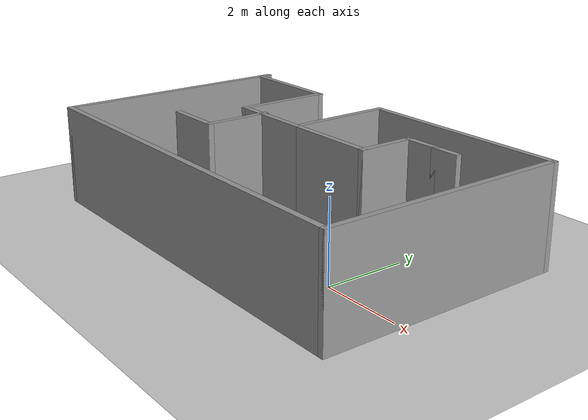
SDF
<sdf version="1.7">
 <world name="default">
  <light name="sun" type="directional">
   <pose>0 0 10 0 -0 0</pose>
   <diffuse>0.8 0.8 0.8 1</diffuse>
   <specular>0.2 0.2 0.2 1</specular>
   <attenuation>
    <range>1000</range>
    <constant>0.9</constant>
    <linear>0.01</linear>
    <quadratic>0.001</quadratic>
   </attenuation>
   <direction>-0.5 0.1 -0.9</direction>
   <spot><inner_angle>0</inner_angle><outer_angle>0</outer_angle><falloff>0</falloff></spot>
  </light>
  <model name="ground_plane">
   <static>1</static>
   <link name="link">
    <collision name="collision">
     <geometry><plane><normal>0 0 1</normal><size>100 100</size></plane></geometry>
     <surface>
      <contact><collide_bitmask>65535</collide_bitmask></contact>
      <friction><ode><mu>100</mu><mu2>50</mu2></ode></friction>
     </surface>
    </collision>
    <visual name="visual">
     <cast_shadows>0</cast_shadows>
     <geometry><plane><normal>0 0 1</normal><size>100 100</size></plane></geometry>
     <material>
      <script><uri>file://media/materials/scripts/gazebo.material</uri><name>Gazebo/Grey</name></script>
     </material>
    </visual>
   </link>
  </model>
  <gravity>0 0 -9.8</gravity>
  <magnetic_field>6e-06 2.3e-05 -4.2e-05</magnetic_field>
  <atmosphere type="adiabatic"/>
  <physics type="ode">
   <max_step_size>0.001</max_step_size>
   <real_time_factor>1</real_time_factor>
   <real_time_update_rate>1000</real_time_update_rate>
  </physics>
  <scene><ambient>0.4 0.4 0.4 1</ambient><background>0.7 0.7 0.7 1</background><shadows>1</shadows></scene>
  <audio><device>default</device></audio>
  <spherical_coordinates>
   <surface_model>EARTH_WGS84</surface_model>
   <latitude_deg>0</latitude_deg>
   <longitude_deg>0</longitude_deg>
   <elevation>0</elevation>
   <heading_deg>0</heading_deg>
  </spherical_coordinates>
  <model name="second.world">
   <pose>-2.88066 1.15882 0 0 -0 0</pose>
   <link name="Wall_0">
    <collision name="Wall_0_Collision">
     <geometry><box><size>6.25 0.15 2.5</size></box></geometry>
     <pose>0 0 1.25 0 -0 0</pose>
    </collision>
    <visual name="Wall_0_Visual">
     <pose>0 0 1.25 0 -0 0</pose>
     <geometry><box><size>6.25 0.15 2.5</size></box></geometry>
     <material>
      <script><uri>file://media/materials/scripts/gazebo.material</uri><name>Gazebo/Grey</name></script>
      <ambient>1 1 1 1</ambient>
     </material>
     <meta><layer>0</layer></meta>
    </visual>
    <pose>-5.05 -0 0 0 -0 -1.5708</pose>
   </link>
   <link name="Wall_1">
    <collision name="Wall_1_Collision">
     <geometry><box><size>10.25 0.15 2.5</size></box></geometry>
     <pose>0 0 1.25 0 -0 0</pose>
    </collision>
    <visual name="Wall_1_Visual">
     <pose>0 0 1.25 0 -0 0</pose>
     <geometry><box><size>10.25 0.15 2.5</size></box></geometry>
     <material>
      <script><uri>file://media/materials/scripts/gazebo.material</uri><name>Gazebo/Grey</name></script>
      <ambient>1 1 1 1</ambient>
     </material>
     <meta><layer>0</layer></meta>
    </visual>
    <pose>0 -3.05 0 0 -0 0</pose>
   </link>
   <link name="Wall_10">
    <collision name="Wall_10_Collision">
     <geometry><box><size>1.5 0.15 2.5</size></box></geometry>
     <pose>0 0 1.25 0 -0 0</pose>
    </collision>
    <visual name="Wall_10_Visual">
     <pose>0 0 1.25 0 -0 0</pose>
     <geometry><box><size>1.5 0.15 2.5</size></box></geometry>
     <material>
      <script><uri>file://media/materials/scripts/gazebo.material</uri><name>Gazebo/Grey</name></script>
      <ambient>1 1 1 1</ambient>
     </material>
     <meta><layer>0</layer></meta>
    </visual>
    <pose>2.05 1.125 0 0 -0 1.5708</pose>
   </link>
   <link name="Wall_11">
    <collision name="Wall_11_Collision">
     <geometry><box><size>1 0.15 2.5</size></box></geometry>
     <pose>0 0 1.25 0 -0 0</pose>
    </collision>
    <visual name="Wall_11_Visual">
     <pose>0 0 1.25 0 -0 0</pose>
     <geometry><box><size>1 0.15 2.5</size></box></geometry>
     <material>
      <script><uri>file://media/materials/scripts/gazebo.material</uri><name>Gazebo/Grey</name></script>
      <ambient>1 1 1 1</ambient>
     </material>
     <meta><layer>0</layer></meta>
    </visual>
    <pose>2.475 1.8 0 0 -0 0</pose>
   </link>
   <link name="Wall_12">
    <collision name="Wall_12_Collision">
     <geometry><box><size>0.75 0.15 2.5</size></box></geometry>
     <pose>0 0 1.25 0 -0 0</pose>
    </collision>
    <visual name="Wall_12_Visual">
     <pose>0 0 1.25 0 -0 0</pose>
     <geometry><box><size>0.75 0.15 2.5</size></box></geometry>
     <material>
      <script><uri>file://media/materials/scripts/gazebo.material</uri><name>Gazebo/Grey</name></script>
      <ambient>1 1 1 1</ambient>
     </material>
     <meta><layer>0</layer></meta>
    </visual>
    <pose>3.2 1.8 0 0 -0 0</pose>
   </link>
   <link name="Wall_14">
    <collision name="Wall_14_Collision">
     <geometry><box><size>1.75 0.15 2.5</size></box></geometry>
     <pose>0 0 1.25 0 -0 0</pose>
    </collision>
    <visual name="Wall_14_Visual">
     <pose>0 0 1.25 0 -0 0</pose>
     <geometry><box><size>1.75 0.15 2.5</size></box></geometry>
     <material>
      <script><uri>file://media/materials/scripts/gazebo.material</uri><name>Gazebo/Grey</name></script>
      <ambient>1 1 1 1</ambient>
     </material>
     <meta><layer>0</layer></meta>
    </visual>
    <pose>-1.68508 -0.288989 0 0 -0 -1.5708</pose>
   </link>
   <link name="Wall_15">
    <collision name="Wall_15_Collision">
     <geometry><box><size>1.5 0.15 2.5</size></box></geometry>
     <pose>0 0 1.25 0 -0 0</pose>
    </collision>
    <visual name="Wall_15_Visual">
     <pose>0 0 1.25 0 -0 0</pose>
     <geometry><box><size>1.5 0.15 2.5</size></box></geometry>
     <material>
      <script><uri>file://media/materials/scripts/gazebo.material</uri><name>Gazebo/Grey</name></script>
      <ambient>1 1 1 1</ambient>
     </material>
     <meta><layer>0</layer></meta>
    </visual>
    <pose>-2.36008 -1.08899 0 0 -0 3.14159</pose>
   </link>
   <link name="Wall_2">
    <collision name="Wall_2_Collision">
     <geometry><box><size>6.25 0.15 2.5</size></box></geometry>
     <pose>0 0 1.25 0 -0 0</pose>
    </collision>
    <visual name="Wall_2_Visual">
     <pose>0 0 1.25 0 -0 0</pose>
     <geometry><box><size>6.25 0.15 2.5</size></box></geometry>
     <material>
      <script><uri>file://media/materials/scripts/gazebo.material</uri><name>Gazebo/Grey</name></script>
      <ambient>1 1 1 1</ambient>
     </material>
     <meta><layer>0</layer></meta>
    </visual>
    <pose>5.05 -0 0 0 -0 1.5708</pose>
   </link>
   <link name="Wall_3">
    <collision name="Wall_3_Collision">
     <geometry><box><size>5.5 0.15 2.5</size></box></geometry>
     <pose>0 0 1.25 0 -0 0</pose>
    </collision>
    <visual name="Wall_3_Visual">
     <pose>0 0 1.25 0 -0 0</pose>
     <geometry><box><size>5.5 0.15 2.5</size></box></geometry>
     <material>
      <script><uri>file://media/materials/scripts/gazebo.material</uri><name>Gazebo/Grey</name></script>
      <ambient>1 1 1 1</ambient>
     </material>
     <meta><layer>0</layer></meta>
    </visual>
    <pose>2.375 3.05 0 0 -0 3.14159</pose>
   </link>
   <link name="Wall_4">
    <collision name="Wall_4_Collision">
     <geometry><box><size>2.75 0.15 2.5</size></box></geometry>
     <pose>0 0 1.25 0 -0 0</pose>
    </collision>
    <visual name="Wall_4_Visual">
     <pose>0 0 1.25 0 -0 0</pose>
     <geometry><box><size>2.75 0.15 2.5</size></box></geometry>
     <material>
      <script><uri>file://media/materials/scripts/gazebo.material</uri><name>Gazebo/Grey</name></script>
      <ambient>1 1 1 1</ambient>
     </material>
     <meta><layer>0</layer></meta>
    </visual>
    <pose>-0.3 1.75 0 0 -0 -1.5708</pose>
   </link>
   <link name="Wall_5">
    <collision name="Wall_5_Collision">
     <geometry><box><size>2.25 0.15 2.5</size></box></geometry>
     <pose>0 0 1.25 0 -0 0</pose>
    </collision>
    <visual name="Wall_5_Visual">
     <pose>0 0 1.25 0 -0 0</pose>
     <geometry><box><size>2.25 0.15 2.5</size></box></geometry>
     <material>
      <script><uri>file://media/materials/scripts/gazebo.material</uri><name>Gazebo/Grey</name></script>
      <ambient>1 1 1 1</ambient>
     </material>
     <meta><layer>0</layer></meta>
    </visual>
    <pose>-1.35 0.45 0 0 -0 3.14159</pose>
   </link>
   <link name="Wall_6">
    <collision name="Wall_6_Collision">
     <geometry><box><size>2.5 0.15 2.5</size></box></geometry>
     <pose>0 0 1.25 0 -0 0</pose>
    </collision>
    <visual name="Wall_6_Visual">
     <pose>0 0 1.25 0 -0 0</pose>
     <geometry><box><size>2.5 0.15 2.5</size></box></geometry>
     <material>
      <script><uri>file://media/materials/scripts/gazebo.material</uri><name>Gazebo/Grey</name></script>
      <ambient>1 1 1 1</ambient>
     </material>
     <meta><layer>0</layer></meta>
    </visual>
    <pose>-2.4 1.625 0 0 -0 1.5708</pose>
   </link>
   <link name="Wall_7">
    <collision name="Wall_7_Collision">
     <geometry><box><size>2.75 0.15 2.5</size></box></geometry>
     <pose>0 0 1.25 0 -0 0</pose>
    </collision>
    <visual name="Wall_7_Visual">
     <pose>0 0 1.25 0 -0 0</pose>
     <geometry><box><size>2.75 0.15 2.5</size></box></geometry>
     <material>
      <script><uri>file://media/materials/scripts/gazebo.material</uri><name>Gazebo/Grey</name></script>
      <ambient>1 1 1 1</ambient>
     </material>
     <meta><layer>0</layer></meta>
    </visual>
    <pose>-3.7 2.8 0 0 -0 3.14159</pose>
   </link>
   <link name="Wall_9">
    <collision name="Wall_9_Collision">
     <geometry><box><size>2.5 0.15 2.5</size></box></geometry>
     <pose>0 0 1.25 0 -0 0</pose>
    </collision>
    <visual name="Wall_9_Visual">
     <pose>0 0 1.25 0 -0 0</pose>
     <geometry><box><size>2.5 0.15 2.5</size></box></geometry>
     <material>
      <script><uri>file://media/materials/scripts/gazebo.material</uri><name>Gazebo/Grey</name></script>
      <ambient>1 1 1 1</ambient>
     </material>
     <meta><layer>0</layer></meta>
    </visual>
    <pose>0.875 0.45 0 0 -0 0</pose>
   </link>
   <static>1</static>
  </model>
 </world>
</sdf>
